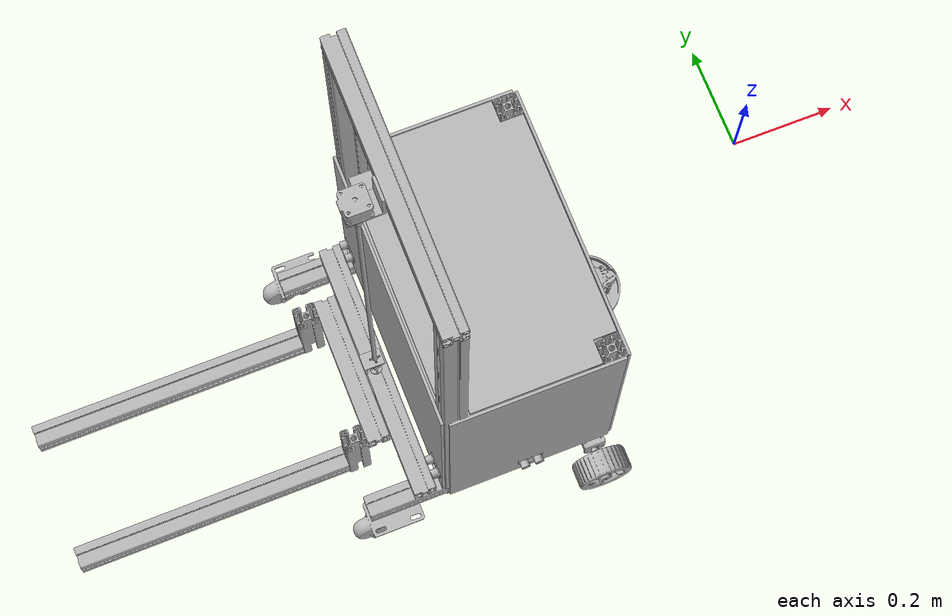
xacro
<?xml version="1.0" ?>
<robot name="fork_redesigned" xmlns:xacro="http://www.ros.org/wiki/xacro">

<material name="silver">
  <color rgba="0.700 0.700 0.700 1.000"/>
</material>

<link name="base_link">
  <inertial>
    <origin xyz="-0.20795469184056845 0.6059726874768782 0.0024999999999999988" rpy="0 0 0"/>
    <mass value="5.803455309747966"/>
    <inertia ixx="0.045914" iyy="0.111394" izz="0.157284" ixy="0.0" iyz="0.0" ixz="0.0"/>
  </inertial>
  <visual>
    <origin xyz="0 0 0" rpy="0 0 0"/>
    <geometry>
      <mesh filename="file://$(find mybot_description)/meshes/base_link.stl" scale="0.001 0.001 0.001"/>
    </geometry>
    <material name="silver"/>
  </visual>
  <collision>
    <origin xyz="0 0 0" rpy="0 0 0"/>
    <geometry>
      <mesh filename="file://$(find mybot_description)/meshes/base_link.stl" scale="0.001 0.001 0.001"/>
    </geometry>
  </collision>
</link>

<link name="left_motor_link_1">
  <inertial>
    <origin xyz="-0.025746401927791592 -5.590644955644208e-06 0.006676741521228598" rpy="0 0 0"/>
    <mass value="0.12785022222079845"/>
    <inertia ixx="2.3e-05" iyy="5.6e-05" izz="5.6e-05" ixy="-0.0" iyz="0.0" ixz="2e-06"/>
  </inertial>
  <visual>
    <origin xyz="-0.046591 -0.481881 0.034" rpy="0 0 0"/>
    <geometry>
      <mesh filename="file://$(find mybot_description)/meshes/left_motor_link_1.stl" scale="0.001 0.001 0.001"/>
    </geometry>
    <material name="silver"/>
  </visual>
  <collision>
    <origin xyz="-0.046591 -0.481881 0.034" rpy="0 0 0"/>
    <geometry>
      <mesh filename="file://$(find mybot_description)/meshes/left_motor_link_1.stl" scale="0.001 0.001 0.001"/>
    </geometry>
  </collision>
</link>

<link name="right_motor_link_1">
  <inertial>
    <origin xyz="0.025746018246653235 3.979878347382115e-06 0.0066732309909901845" rpy="0 0 0"/>
    <mass value="0.12785022222079845"/>
    <inertia ixx="2.3e-05" iyy="5.6e-05" izz="5.6e-05" ixy="-0.0" iyz="-0.0" ixz="-2e-06"/>
  </inertial>
  <visual>
    <origin xyz="0.4625 -0.481881 0.034" rpy="0 0 0"/>
    <geometry>
      <mesh filename="file://$(find mybot_description)/meshes/right_motor_link_1.stl" scale="0.001 0.001 0.001"/>
    </geometry>
    <material name="silver"/>
  </visual>
  <collision>
    <origin xyz="0.4625 -0.481881 0.034" rpy="0 0 0"/>
    <geometry>
      <mesh filename="file://$(find mybot_description)/meshes/right_motor_link_1.stl" scale="0.001 0.001 0.001"/>
    </geometry>
  </collision>
</link>

<link name="left_wheel_link_1">
  <inertial>
    <origin xyz="2.7720433450062476e-07 -2.0531275590762732e-07 3.703704010149522e-13" rpy="0 0 0"/>
    <mass value="1.9401899677229664"/>
    <inertia ixx="0.002715" iyy="0.001642" izz="0.001642" ixy="0.0" iyz="-0.0" ixz="0.0"/>
  </inertial>
  <visual>
    <origin xyz="-0.080339 -0.481881 0.034" rpy="0 0 0"/>
    <geometry>
      <mesh filename="file://$(find mybot_description)/meshes/left_wheel_link_1.stl" scale="0.001 0.001 0.001"/>
    </geometry>
    <material name="silver"/>
  </visual>
  <collision><origin xyz="0 0 0" rpy="0 1.5708 0"/><geometry><cylinder radius="0.053" length="0.04"/></geometry></collision>
</link>

<link name="right_wheel_link_1">
  <inertial>
    <origin xyz="-3.5186992197733247e-07 -2.0517171450684657e-07 2.986638714119749e-13" rpy="0 0 0"/>
    <mass value="1.9401899677229664"/>
    <inertia ixx="0.002715" iyy="0.001642" izz="0.001642" ixy="0.0" iyz="-0.0" ixz="0.0"/>
  </inertial>
  <visual>
    <origin xyz="0.497251 -0.481881 0.034" rpy="0 0 0"/>
    <geometry>
      <mesh filename="file://$(find mybot_description)/meshes/right_wheel_link_1.stl" scale="0.001 0.001 0.001"/>
    </geometry>
    <material name="silver"/>
  </visual>
  <collision><origin xyz="0 0 0" rpy="0 1.5708 0"/><geometry><cylinder radius="0.053" length="0.04"/></geometry></collision>
</link>

<link name="fork_coupling_link_1">
  <inertial>
    <origin xyz="3.705325111180713e-07 -1.826110224145694e-07 -0.003490428234809051" rpy="0 0 0"/>
    <mass value="0.012051917875242903"/>
    <inertia ixx="0.0" iyy="0.0" izz="1e-06" ixy="0.0" iyz="0.0" ixz="0.0"/>
  </inertial>
  <visual>
    <origin xyz="0.208955 -0.800881 -0.14442" rpy="0 0 0"/>
    <geometry>
      <mesh filename="file://$(find mybot_description)/meshes/fork_coupling_link_1.stl" scale="0.001 0.001 0.001"/>
    </geometry>
    <material name="silver"/>
  </visual>
  <collision>
    <origin xyz="0.208955 -0.800881 -0.14442" rpy="0 0 0"/>
    <geometry>
      <mesh filename="file://$(find mybot_description)/meshes/fork_coupling_link_1.stl" scale="0.001 0.001 0.001"/>
    </geometry>
  </collision>
</link>

<link name="fork_center_slot_1">
  <inertial>
    <origin xyz="3.0815943902195997e-07 0.020000494982010952 -0.011399999999995525" rpy="0 0 0"/>
    <mass value="0.39467195073133987"/>
    <inertia ixx="0.000117" iyy="0.002456" izz="0.002456" ixy="0.0" iyz="-0.0" ixz="0.0"/>
  </inertial>
  <visual>
    <origin xyz="0.208955 -0.824421 -0.13292" rpy="0 0 0"/>
    <geometry>
      <mesh filename="file://$(find mybot_description)/meshes/fork_center_slot_1.stl" scale="0.001 0.001 0.001"/>
    </geometry>
    <material name="silver"/>
  </visual>
  <collision>
    <origin xyz="0.208955 -0.824421 -0.13292" rpy="0 0 0"/>
    <geometry>
      <mesh filename="file://$(find mybot_description)/meshes/fork_center_slot_1.stl" scale="0.001 0.001 0.001"/>
    </geometry>
  </collision>
</link>

<link name="fork_left_link_1">
  <inertial>
    <origin xyz="-0.016999691840535375 0.25000049498201105 0.020000000000036586" rpy="0 0 0"/>
    <mass value="0.7308739828358146"/>
    <inertia ixx="0.015334" iyy="0.000216" izz="0.015334" ixy="-0.0" iyz="-0.0" ixz="0.0"/>
  </inertial>
  <visual>
    <origin xyz="0.073955 -0.904421 0.01148" rpy="0 0 0"/>
    <geometry>
      <mesh filename="file://$(find mybot_description)/meshes/fork_left_link_1.stl" scale="0.001 0.001 0.001"/>
    </geometry>
    <material name="silver"/>
  </visual>
  <collision>
    <origin xyz="0.073955 -0.904421 0.01148" rpy="0 0 0"/>
    <geometry>
      <mesh filename="file://$(find mybot_description)/meshes/fork_left_link_1.stl" scale="0.001 0.001 0.001"/>
    </geometry>
  </collision>
</link>

<link name="fork_right_link_1">
  <inertial>
    <origin xyz="0.020000308159456304 0.2500004949820257 0.01700000000003189" rpy="0 0 0"/>
    <mass value="0.730873982835814"/>
    <inertia ixx="0.015334" iyy="0.000216" izz="0.015334" ixy="-0.0" iyz="-0.0" ixz="0.0"/>
  </inertial>
  <visual>
    <origin xyz="0.343955 -0.904421 0.01148" rpy="0 0 0"/>
    <geometry>
      <mesh filename="file://$(find mybot_description)/meshes/fork_right_link_1.stl" scale="0.001 0.001 0.001"/>
    </geometry>
    <material name="silver"/>
  </visual>
  <collision>
    <origin xyz="0.343955 -0.904421 0.01148" rpy="0 0 0"/>
    <geometry>
      <mesh filename="file://$(find mybot_description)/meshes/fork_right_link_1.stl" scale="0.001 0.001 0.001"/>
    </geometry>
  </collision>
</link>

<link name="left_caster_link_1">
  <inertial>
    <origin xyz="0.0323283745581979 -0.009671932993636001 -0.039792097393055066" rpy="0 0 0"/>
    <mass value="0.12150975817789704"/>
    <inertia ixx="0.00015" iyy="8.9e-05" izz="9.4e-05" ixy="-2e-06" iyz="4.5e-05" ixz="1e-06"/>
  </inertial>
  <visual>
    <origin xyz="0.004955 -0.901881 -0.005" rpy="0 0 0"/>
    <geometry>
      <mesh filename="file://$(find mybot_description)/meshes/left_caster_link_1.stl" scale="0.001 0.001 0.001"/>
    </geometry>
    <material name="silver"/>
  </visual>
  <collision><origin xyz="0.0323283 -0.0096719 -0.0398" rpy="0 0 0"/><geometry><sphere radius="0.053"/></geometry></collision>
</link>

<link name="right_caster_link_1">
  <inertial>
    <origin xyz="-0.03249968838843048 -0.01040190184053158 -0.03942068950412225" rpy="0 0 0"/>
    <mass value="0.12271576702932177"/>
    <inertia ixx="0.000159" iyy="9.1e-05" izz="0.000101" ixy="0.0" iyz="4.8e-05" ixz="-0.0"/>
  </inertial>
  <visual>
    <origin xyz="0.410955 -0.901881 -0.005" rpy="0 0 0"/>
    <geometry>
      <mesh filename="file://$(find mybot_description)/meshes/right_caster_link_1.stl" scale="0.001 0.001 0.001"/>
    </geometry>
    <material name="silver"/>
  </visual>
  <collision><origin xyz="-0.0325 -0.0104019 -0.0394" rpy="0 0 0"/><geometry><sphere radius="0.053"/></geometry></collision>
</link>

<link name="fork_left_h_slot_1">
  <inertial>
    <origin xyz="-0.016999691840558134 0.02000049498201173 -0.0749999999999916" rpy="0 0 0"/>
    <mass value="0.21926219485074405"/>
    <inertia ixx="0.000444" iyy="0.000444" izz="6.5e-05" ixy="0.0" iyz="0.0" ixz="0.0"/>
  </inertial>
  <visual>
    <origin xyz="0.073955 -0.864421 -0.13852" rpy="0 0 0"/>
    <geometry>
      <mesh filename="file://$(find mybot_description)/meshes/fork_left_h_slot_1.stl" scale="0.001 0.001 0.001"/>
    </geometry>
    <material name="silver"/>
  </visual>
  <collision>
    <origin xyz="0.073955 -0.864421 -0.13852" rpy="0 0 0"/>
    <geometry>
      <mesh filename="file://$(find mybot_description)/meshes/fork_left_h_slot_1.stl" scale="0.001 0.001 0.001"/>
    </geometry>
  </collision>
</link>

<link name="fork_right_h_slot_1">
  <inertial>
    <origin xyz="0.017000308159592414 0.020000494982023165 -0.0749999999999919" rpy="0 0 0"/>
    <mass value="0.21926219485074516"/>
    <inertia ixx="0.000444" iyy="0.000444" izz="6.5e-05" ixy="0.0" iyz="0.0" ixz="-0.0"/>
  </inertial>
  <visual>
    <origin xyz="0.343955 -0.864421 -0.13852" rpy="0 0 0"/>
    <geometry>
      <mesh filename="file://$(find mybot_description)/meshes/fork_right_h_slot_1.stl" scale="0.001 0.001 0.001"/>
    </geometry>
    <material name="silver"/>
  </visual>
  <collision>
    <origin xyz="0.343955 -0.864421 -0.13852" rpy="0 0 0"/>
    <geometry>
      <mesh filename="file://$(find mybot_description)/meshes/fork_right_h_slot_1.stl" scale="0.001 0.001 0.001"/>
    </geometry>
  </collision>
</link>

<link name="front_bottom_slot_link_1">
  <inertial>
    <origin xyz="3.081594328602222e-07 0.016999794757658004 0.020000000000151952" rpy="0 0 0"/>
    <mass value="0.5846991862686549"/>
    <inertia ixx="0.000173" iyy="0.007882" izz="0.007882" ixy="-0.0" iyz="0.0" ixz="0.0"/>
  </inertial>
  <visual>
    <origin xyz="0.207955 -0.454881 -0.005" rpy="0 0 0"/>
    <geometry>
      <mesh filename="file://$(find mybot_description)/meshes/front_bottom_slot_link_1.stl" scale="0.001 0.001 0.001"/>
    </geometry>
    <material name="silver"/>
  </visual>
  <collision>
    <origin xyz="0.207955 -0.454881 -0.005" rpy="0 0 0"/>
    <geometry>
      <mesh filename="file://$(find mybot_description)/meshes/front_bottom_slot_link_1.stl" scale="0.001 0.001 0.001"/>
    </geometry>
  </collision>
</link>

<link name="fork_front_slot_right_link_1">
  <inertial>
    <origin xyz="0.017000308159433153 0.019999794757657396 0.23000000000000614" rpy="0 0 0"/>
    <mass value="0.6724040642089485"/>
    <inertia ixx="0.011956" iyy="0.011956" izz="0.000199" ixy="0.0" iyz="0.0" ixz="-0.0"/>
  </inertial>
  <visual>
    <origin xyz="0.444955 -0.451881 -0.045" rpy="0 0 0"/>
    <geometry>
      <mesh filename="file://$(find mybot_description)/meshes/fork_front_slot_right_link_1.stl" scale="0.001 0.001 0.001"/>
    </geometry>
    <material name="silver"/>
  </visual>
  <collision>
    <origin xyz="0.444955 -0.451881 -0.045" rpy="0 0 0"/>
    <geometry>
      <mesh filename="file://$(find mybot_description)/meshes/fork_front_slot_right_link_1.stl" scale="0.001 0.001 0.001"/>
    </geometry>
  </collision>
</link>

<link name="fork_front_slot_left_link_1">
  <inertial>
    <origin xyz="-0.01699969184056261 0.019999794757658007 0.22999999999999526" rpy="0 0 0"/>
    <mass value="0.6724040642089485"/>
    <inertia ixx="0.011956" iyy="0.011956" izz="0.000199" ixy="0.0" iyz="0.0" ixz="-0.0"/>
  </inertial>
  <visual>
    <origin xyz="-0.029045 -0.451881 -0.045" rpy="0 0 0"/>
    <geometry>
      <mesh filename="file://$(find mybot_description)/meshes/fork_front_slot_left_link_1.stl" scale="0.001 0.001 0.001"/>
    </geometry>
    <material name="silver"/>
  </visual>
  <collision>
    <origin xyz="-0.029045 -0.451881 -0.045" rpy="0 0 0"/>
    <geometry>
      <mesh filename="file://$(find mybot_description)/meshes/fork_front_slot_left_link_1.stl" scale="0.001 0.001 0.001"/>
    </geometry>
  </collision>
</link>

<link name="rear_bottom_slot_link_1">
  <inertial>
    <origin xyz="-0.00024969184056747307 -0.016999999999999904 0.020000000000151927" rpy="0 0 0"/>
    <mass value="0.5839683122858196"/>
    <inertia ixx="0.000172" iyy="0.007853" izz="0.007853" ixy="0.0" iyz="0.0" ixz="0.0"/>
  </inertial>
  <visual>
    <origin xyz="0.207955 -0.76 -0.005" rpy="0 0 0"/>
    <geometry>
      <mesh filename="file://$(find mybot_description)/meshes/rear_bottom_slot_link_1.stl" scale="0.001 0.001 0.001"/>
    </geometry>
    <material name="silver"/>
  </visual>
  <collision>
    <origin xyz="0.207955 -0.76 -0.005" rpy="0 0 0"/>
    <geometry>
      <mesh filename="file://$(find mybot_description)/meshes/rear_bottom_slot_link_1.stl" scale="0.001 0.001 0.001"/>
    </geometry>
  </collision>
</link>

<link name="fork_rear_slot_left_link_1">
  <inertial>
    <origin xyz="0.003954308159446224 0.24599979475765743 1.1468809999999938" rpy="0 0 0"/>
    <mass value="1.3155731691044652"/>
    <inertia ixx="0.088995" iyy="0.088995" izz="0.000389" ixy="-0.0" iyz="-0.0" ixz="-0.0"/>
  </inertial>
  <visual>
    <origin xyz="-0.007091 -0.496881 0.651881" rpy="0 0 0"/>
    <geometry>
      <mesh filename="file://$(find mybot_description)/meshes/fork_rear_slot_left_link_1.stl" scale="0.001 0.001 0.001"/>
    </geometry>
    <material name="silver"/>
  </visual>
  <collision>
    <origin xyz="-0.007091 -0.496881 0.651881" rpy="0 0 0"/>
    <geometry>
      <mesh filename="file://$(find mybot_description)/meshes/fork_rear_slot_left_link_1.stl" scale="0.001 0.001 0.001"/>
    </geometry>
  </collision>
</link>

<link name="front_panel_link_1">
  <inertial>
    <origin xyz="3.0815943777295907e-07 -0.002500205242342235 0.246999999999999" rpy="0 0 0"/>
    <mass value="9.42"/>
    <inertia ixx="0.19627" iyy="0.377114" izz="0.180884" ixy="-0.0" iyz="0.0" ixz="-0.0"/>
  </inertial>
  <visual>
    <origin xyz="0.207955 -0.451881 -0.008" rpy="0 0 0"/>
    <geometry>
      <mesh filename="file://$(find mybot_description)/meshes/front_panel_link_1.stl" scale="0.001 0.001 0.001"/>
    </geometry>
    <material name="silver"/>
  </visual>
  <collision>
    <origin xyz="0.207955 -0.451881 -0.008" rpy="0 0 0"/>
    <geometry>
      <mesh filename="file://$(find mybot_description)/meshes/front_panel_link_1.stl" scale="0.001 0.001 0.001"/>
    </geometry>
  </collision>
</link>

<link name="ultrasonic_side_left_1">
  <inertial>
    <origin xyz="-0.028052268925181312 -0.459881293811757 -0.48277897105527917" rpy="0 0 0"/>
    <mass value="0.029441365273187678"/>
    <inertia ixx="6e-06" iyy="1e-06" izz="5e-06" ixy="-0.0" iyz="0.0" ixz="-0.0"/>
  </inertial>
  <visual>
    <origin xyz="-0.069091 -1.067762 -0.5375" rpy="0 0 0"/>
    <geometry>
      <mesh filename="file://$(find mybot_description)/meshes/ultrasonic_side_left_1.stl" scale="0.001 0.001 0.001"/>
    </geometry>
    <material name="silver"/>
  </visual>
  <collision>
    <origin xyz="-0.069091 -1.067762 -0.5375" rpy="0 0 0"/>
    <geometry>
      <mesh filename="file://$(find mybot_description)/meshes/ultrasonic_side_left_1.stl" scale="0.001 0.001 0.001"/>
    </geometry>
  </collision>
</link>

<link name="ultrasonic_rear_right_1">
  <inertial>
    <origin xyz="0.47595439672884804 0.7718742176730425 -0.7357789710552561" rpy="0 0 0"/>
    <mass value="0.029441365273187678"/>
    <inertia ixx="1e-06" iyy="6e-06" izz="5e-06" ixy="0.0" iyz="-0.0" ixz="-0.0"/>
  </inertial>
  <visual>
    <origin xyz="0.891909 -0.0 -0.8455" rpy="0 0 0"/>
    <geometry>
      <mesh filename="file://$(find mybot_description)/meshes/ultrasonic_rear_right_1.stl" scale="0.001 0.001 0.001"/>
    </geometry>
    <material name="silver"/>
  </visual>
  <collision>
    <origin xyz="0.891909 -0.0 -0.8455" rpy="0 0 0"/>
    <geometry>
      <mesh filename="file://$(find mybot_description)/meshes/ultrasonic_rear_right_1.stl" scale="0.001 0.001 0.001"/>
    </geometry>
  </collision>
</link>

<link name="Webcam_1">
  <inertial>
    <origin xyz="3.0815942445028277e-07 0.009262291980458137 0.015000000000013218" rpy="0 0 0"/>
    <mass value="0.4001003373748857"/>
    <inertia ixx="3.8e-05" iyy="0.000312" izz="0.000299" ixy="0.0" iyz="0.0" ixz="0.0"/>
  </inertial>
  <visual>
    <origin xyz="0.207205 -0.818881 -0.0506" rpy="0 0 0"/>
    <geometry>
      <mesh filename="file://$(find mybot_description)/meshes/Webcam_1.stl" scale="0.001 0.001 0.001"/>
    </geometry>
    <material name="silver"/>
  </visual>
  <collision>
    <origin xyz="0.207205 -0.818881 -0.0506" rpy="0 0 0"/>
    <geometry>
      <mesh filename="file://$(find mybot_description)/meshes/Webcam_1.stl" scale="0.001 0.001 0.001"/>
    </geometry>
  </collision>
</link>

<link name="right_bottom_slot_link_1">
  <inertial>
    <origin xyz="-0.01999969184072281 0.22499979475765797 -0.016999999999994044" rpy="0 0 0"/>
    <mass value="0.6577865845522363"/>
    <inertia ixx="0.011197" iyy="0.000194" izz="0.011197" ixy="0.0" iyz="0.0" ixz="-0.0"/>
  </inertial>
  <visual>
    <origin xyz="0.407955 -0.451881 -0.042" rpy="0 0 0"/>
    <geometry>
      <mesh filename="file://$(find mybot_description)/meshes/right_bottom_slot_link_1.stl" scale="0.001 0.001 0.001"/>
    </geometry>
    <material name="silver"/>
  </visual>
  <collision>
    <origin xyz="0.407955 -0.451881 -0.042" rpy="0 0 0"/>
    <geometry>
      <mesh filename="file://$(find mybot_description)/meshes/right_bottom_slot_link_1.stl" scale="0.001 0.001 0.001"/>
    </geometry>
  </collision>
</link>

<link name="left_bottom_slot_link_1">
  <inertial>
    <origin xyz="0.020000308159279286 0.22499979475765852 -0.01700000000000499" rpy="0 0 0"/>
    <mass value="0.6577865845522363"/>
    <inertia ixx="0.011197" iyy="0.000194" izz="0.011197" ixy="0.0" iyz="-0.0" ixz="-0.0"/>
  </inertial>
  <visual>
    <origin xyz="0.007955 -0.451881 -0.042" rpy="0 0 0"/>
    <geometry>
      <mesh filename="file://$(find mybot_description)/meshes/left_bottom_slot_link_1.stl" scale="0.001 0.001 0.001"/>
    </geometry>
    <material name="silver"/>
  </visual>
  <collision>
    <origin xyz="0.007955 -0.451881 -0.042" rpy="0 0 0"/>
    <geometry>
      <mesh filename="file://$(find mybot_description)/meshes/left_bottom_slot_link_1.stl" scale="0.001 0.001 0.001"/>
    </geometry>
  </collision>
</link>

<link name="right_motor_holder_link_1">
  <inertial>
    <origin xyz="-0.02162070548295275 0.01499979475599339 -0.0101518474274165" rpy="0 0 0"/>
    <mass value="0.061662152889289286"/>
    <inertia ixx="1.9e-05" iyy="2.2e-05" izz="2e-05" ixy="-0.0" iyz="-0.0" ixz="-6e-06"/>
  </inertial>
  <visual>
    <origin xyz="0.428 -0.466881 -0.0" rpy="0 0 0"/>
    <geometry>
      <mesh filename="file://$(find mybot_description)/meshes/right_motor_holder_link_1.stl" scale="0.001 0.001 0.001"/>
    </geometry>
    <material name="silver"/>
  </visual>
  <collision>
    <origin xyz="0.428 -0.466881 -0.0" rpy="0 0 0"/>
    <geometry>
      <mesh filename="file://$(find mybot_description)/meshes/right_motor_holder_link_1.stl" scale="0.001 0.001 0.001"/>
    </geometry>
  </collision>
</link>

<link name="left_motor_holder_link_1">
  <inertial>
    <origin xyz="0.021620321801814647 0.014999794759327334 -0.010151847427416521" rpy="0 0 0"/>
    <mass value="0.061662152889289286"/>
    <inertia ixx="1.9e-05" iyy="2.2e-05" izz="2e-05" ixy="-0.0" iyz="0.0" ixz="6e-06"/>
  </inertial>
  <visual>
    <origin xyz="-0.012091 -0.466881 0.0" rpy="0 0 0"/>
    <geometry>
      <mesh filename="file://$(find mybot_description)/meshes/left_motor_holder_link_1.stl" scale="0.001 0.001 0.001"/>
    </geometry>
    <material name="silver"/>
  </visual>
  <collision>
    <origin xyz="-0.012091 -0.466881 0.0" rpy="0 0 0"/>
    <geometry>
      <mesh filename="file://$(find mybot_description)/meshes/left_motor_holder_link_1.stl" scale="0.001 0.001 0.001"/>
    </geometry>
  </collision>
</link>

<link name="clamp_link_1">
  <inertial>
    <origin xyz="-5.91613212697073e-07 0.015295447605025991 -0.038677831596409806" rpy="0 0 0"/>
    <mass value="0.15417304639061474"/>
    <inertia ixx="9.7e-05" iyy="6.7e-05" izz="7.4e-05" ixy="-0.0" iyz="2.7e-05" ixz="0.0"/>
  </inertial>
  <visual>
    <origin xyz="0.208955 -0.762881 -0.9764" rpy="0 0 0"/>
    <geometry>
      <mesh filename="file://$(find mybot_description)/meshes/clamp_link_1.stl" scale="0.001 0.001 0.001"/>
    </geometry>
    <material name="silver"/>
  </visual>
  <collision>
    <origin xyz="0.208955 -0.762881 -0.9764" rpy="0 0 0"/>
    <geometry>
      <mesh filename="file://$(find mybot_description)/meshes/clamp_link_1.stl" scale="0.001 0.001 0.001"/>
    </geometry>
  </collision>
</link>

<link name="ultrasonic_side_right_1">
  <inertial>
    <origin xyz="-0.4619481147559526 -0.4548811166729275 -0.47052897105527036" rpy="0 0 0"/>
    <mass value="0.029441365273187678"/>
    <inertia ixx="6e-06" iyy="1e-06" izz="5e-06" ixy="-0.0" iyz="-0.0" ixz="0.0"/>
  </inertial>
  <visual>
    <origin xyz="-0.005 -1.060262 -0.5275" rpy="0 0 0"/>
    <geometry>
      <mesh filename="file://$(find mybot_description)/meshes/ultrasonic_side_right_1.stl" scale="0.001 0.001 0.001"/>
    </geometry>
    <material name="silver"/>
  </visual>
  <collision>
    <origin xyz="-0.005 -1.060262 -0.5275" rpy="0 0 0"/>
    <geometry>
      <mesh filename="file://$(find mybot_description)/meshes/ultrasonic_side_right_1.stl" scale="0.001 0.001 0.001"/>
    </geometry>
  </collision>
</link>

<link name="right_panel_link_1">
  <inertial>
    <origin xyz="-0.002499691840567364 0.15049979475765696 -0.24849999999999522" rpy="0 0 0"/>
    <mass value="5.871682249999999"/>
    <inertia ixx="0.165195" iyy="0.120875" izz="0.044344" ixy="0.0" iyz="-0.0" ixz="0.0"/>
  </inertial>
  <visual>
    <origin xyz="0.447955 -0.454881 -0.505" rpy="0 0 0"/>
    <geometry>
      <mesh filename="file://$(find mybot_description)/meshes/right_panel_link_1.stl" scale="0.001 0.001 0.001"/>
    </geometry>
    <material name="silver"/>
  </visual>
  <collision>
    <origin xyz="0.447955 -0.454881 -0.505" rpy="0 0 0"/>
    <geometry>
      <mesh filename="file://$(find mybot_description)/meshes/right_panel_link_1.stl" scale="0.001 0.001 0.001"/>
    </geometry>
  </collision>
</link>

<link name="left_panel_link_1">
  <inertial>
    <origin xyz="0.002500308159438046 0.15299979475765835 -0.25000000000000533" rpy="0 0 0"/>
    <mass value="6.00525"/>
    <inertia ixx="0.171968" iyy="0.125122" izz="0.046871" ixy="0.0" iyz="0.0" ixz="-0.0"/>
  </inertial>
  <visual>
    <origin xyz="-0.032045 -0.454881 -0.505" rpy="0 0 0"/>
    <geometry>
      <mesh filename="file://$(find mybot_description)/meshes/left_panel_link_1.stl" scale="0.001 0.001 0.001"/>
    </geometry>
    <material name="silver"/>
  </visual>
  <collision>
    <origin xyz="-0.032045 -0.454881 -0.505" rpy="0 0 0"/>
    <geometry>
      <mesh filename="file://$(find mybot_description)/meshes/left_panel_link_1.stl" scale="0.001 0.001 0.001"/>
    </geometry>
  </collision>
</link>

<link name="center_panel_link_1">
  <inertial>
    <origin xyz="-0.21258413282495595 -0.3570372909095231 -0.19750000000000234" rpy="0 0 0"/>
    <mass value="5.438200843483902"/>
    <inertia ixx="0.03956" iyy="0.09541" izz="0.134946" ixy="0.000113" iyz="0.0" ixz="-0.0"/>
  </inertial>
  <visual>
    <origin xyz="-0.004969 -0.962883 -0.55" rpy="0 0 0"/>
    <geometry>
      <mesh filename="file://$(find mybot_description)/meshes/center_panel_link_1.stl" scale="0.001 0.001 0.001"/>
    </geometry>
    <material name="silver"/>
  </visual>
  <collision>
    <origin xyz="-0.004969 -0.962883 -0.55" rpy="0 0 0"/>
    <geometry>
      <mesh filename="file://$(find mybot_description)/meshes/center_panel_link_1.stl" scale="0.001 0.001 0.001"/>
    </geometry>
  </collision>
</link>

<link name="top_panel_link_1">
  <inertial>
    <origin xyz="-0.2125841328249572 -0.3570372909095235 -0.04750000000000476" rpy="0 0 0"/>
    <mass value="5.438200843483868"/>
    <inertia ixx="0.03956" iyy="0.09541" izz="0.134946" ixy="0.000113" iyz="0.0" ixz="0.0"/>
  </inertial>
  <visual>
    <origin xyz="-0.004969 -0.962883 -0.55" rpy="0 0 0"/>
    <geometry>
      <mesh filename="file://$(find mybot_description)/meshes/top_panel_link_1.stl" scale="0.001 0.001 0.001"/>
    </geometry>
    <material name="silver"/>
  </visual>
  <collision>
    <origin xyz="-0.004969 -0.962883 -0.55" rpy="0 0 0"/>
    <geometry>
      <mesh filename="file://$(find mybot_description)/meshes/top_panel_link_1.stl" scale="0.001 0.001 0.001"/>
    </geometry>
  </collision>
</link>

<link name="fork_top_slot_link_1">
  <inertial>
    <origin xyz="-0.23999969184053846 -0.017000205242341804 0.020000000000004126" rpy="0 0 0"/>
    <mass value="0.701639023522382"/>
    <inertia ixx="0.000207" iyy="0.013575" izz="0.013575" ixy="-0.0" iyz="0.0" ixz="0.0"/>
  </inertial>
  <visual>
    <origin xyz="-0.031045 -0.759881 -0.945" rpy="0 0 0"/>
    <geometry>
      <mesh filename="file://$(find mybot_description)/meshes/fork_top_slot_link_1.stl" scale="0.001 0.001 0.001"/>
    </geometry>
    <material name="silver"/>
  </visual>
  <collision>
    <origin xyz="-0.031045 -0.759881 -0.945" rpy="0 0 0"/>
    <geometry>
      <mesh filename="file://$(find mybot_description)/meshes/fork_top_slot_link_1.stl" scale="0.001 0.001 0.001"/>
    </geometry>
  </collision>
</link>

<link name="fork_rear_slot_right_link_1">
  <inertial>
    <origin xyz="0.0200003081594457 -0.017000205242341915 -0.4499999999999799" rpy="0 0 0"/>
    <mass value="1.3155731691044652"/>
    <inertia ixx="0.088995" iyy="0.088995" izz="0.000389" ixy="-0.0" iyz="0.0" ixz="-0.0"/>
  </inertial>
  <visual>
    <origin xyz="0.448955 -0.759881 -0.945" rpy="0 0 0"/>
    <geometry>
      <mesh filename="file://$(find mybot_description)/meshes/fork_rear_slot_right_link_1.stl" scale="0.001 0.001 0.001"/>
    </geometry>
    <material name="silver"/>
  </visual>
  <collision>
    <origin xyz="0.448955 -0.759881 -0.945" rpy="0 0 0"/>
    <geometry>
      <mesh filename="file://$(find mybot_description)/meshes/fork_rear_slot_right_link_1.stl" scale="0.001 0.001 0.001"/>
    </geometry>
  </collision>
</link>

<link name="ultrasonic_rear_left_1">
  <inertial>
    <origin xyz="0.4159543967288469 0.7718742176730428 -0.7357789710552692" rpy="0 0 0"/>
    <mass value="0.029441365273187678"/>
    <inertia ixx="1e-06" iyy="6e-06" izz="5e-06" ixy="0.0" iyz="-0.0" ixz="-0.0"/>
  </inertial>
  <visual>
    <origin xyz="0.411909 -0.0 -0.8455" rpy="0 0 0"/>
    <geometry>
      <mesh filename="file://$(find mybot_description)/meshes/ultrasonic_rear_left_1.stl" scale="0.001 0.001 0.001"/>
    </geometry>
    <material name="silver"/>
  </visual>
  <collision>
    <origin xyz="0.411909 -0.0 -0.8455" rpy="0 0 0"/>
    <geometry>
      <mesh filename="file://$(find mybot_description)/meshes/ultrasonic_rear_left_1.stl" scale="0.001 0.001 0.001"/>
    </geometry>
  </collision>
</link>

<link name="lead_screw_link_1">
  <inertial>
    <origin xyz="3.0815944851436683e-07 -2.0524230814888966e-07 -0.399999999999999" rpy="0 0 0"/>
    <mass value="0.30518094202047674"/>
    <inertia ixx="0.016277" iyy="0.016277" izz="2e-06" ixy="0.0" iyz="0.0" ixz="-0.0"/>
  </inertial>
  <visual>
    <origin xyz="0.208955 -0.800881 -0.90442" rpy="0 0 0"/>
    <geometry>
      <mesh filename="file://$(find mybot_description)/meshes/lead_screw_link_1.stl" scale="0.001 0.001 0.001"/>
    </geometry>
    <material name="silver"/>
  </visual>
  <collision>
    <origin xyz="0.208955 -0.800881 -0.90442" rpy="0 0 0"/>
    <geometry>
      <mesh filename="file://$(find mybot_description)/meshes/lead_screw_link_1.stl" scale="0.001 0.001 0.001"/>
    </geometry>
  </collision>
</link>

<link name="rear_panel_link_1">
  <inertial>
    <origin xyz="0.2400003081594368 0.0024997947576589352 0.23000000000001197" rpy="0 0 0"/>
    <mass value="8.6664"/>
    <inertia ixx="0.152836" iyy="0.319212" izz="0.166413" ixy="0.0" iyz="0.0" ixz="-0.0"/>
  </inertial>
  <visual>
    <origin xyz="0.445955 -0.762881 -0.045" rpy="0 0 0"/>
    <geometry>
      <mesh filename="file://$(find mybot_description)/meshes/rear_panel_link_1.stl" scale="0.001 0.001 0.001"/>
    </geometry>
    <material name="silver"/>
  </visual>
  <collision>
    <origin xyz="0.445955 -0.762881 -0.045" rpy="0 0 0"/>
    <geometry>
      <mesh filename="file://$(find mybot_description)/meshes/rear_panel_link_1.stl" scale="0.001 0.001 0.001"/>
    </geometry>
  </collision>
</link>

<link name="fork_bottom_slot_link_1">
  <inertial>
    <origin xyz="0.6847043081594261 0.7988807947576637 -0.7834999999999874" rpy="0 0 0"/>
    <mass value="0.6979846536082016"/>
    <inertia ixx="0.000206" iyy="0.013365" izz="0.013365" ixy="-0.0" iyz="0.0" ixz="0.0"/>
  </inertial>
  <visual>
    <origin xyz="0.891909 -0.0 -0.8455" rpy="0 0 0"/>
    <geometry>
      <mesh filename="file://$(find mybot_description)/meshes/fork_bottom_slot_link_1.stl" scale="0.001 0.001 0.001"/>
    </geometry>
    <material name="silver"/>
  </visual>
  <collision>
    <origin xyz="0.891909 -0.0 -0.8455" rpy="0 0 0"/>
    <geometry>
      <mesh filename="file://$(find mybot_description)/meshes/fork_bottom_slot_link_1.stl" scale="0.001 0.001 0.001"/>
    </geometry>
  </collision>
</link>

<link name="bottom_screw_holder_link_1">
  <inertial>
    <origin xyz="-0.2359496918396995 -0.7908812052423371 0.23813661026358368" rpy="0 0 0"/>
    <mass value="0.014958632790476097"/>
    <inertia ixx="2e-06" iyy="2e-06" izz="1e-06" ixy="0.0" iyz="0.0" ixz="0.0"/>
  </inertial>
  <visual>
    <origin xyz="-0.027045 -1.591962 0.145205" rpy="0 0 0"/>
    <geometry>
      <mesh filename="file://$(find mybot_description)/meshes/bottom_screw_holder_link_1.stl" scale="0.001 0.001 0.001"/>
    </geometry>
    <material name="silver"/>
  </visual>
  <collision>
    <origin xyz="-0.027045 -1.591962 0.145205" rpy="0 0 0"/>
    <geometry>
      <mesh filename="file://$(find mybot_description)/meshes/bottom_screw_holder_link_1.stl" scale="0.001 0.001 0.001"/>
    </geometry>
  </collision>
</link>

<link name="imu_link_1">
  <inertial>
    <origin xyz="0.0004657550144223921 -7.40369251310824e-05 0.0011352557386975493" rpy="0 0 0"/>
    <mass value="0.0006377115631169521"/>
    <inertia ixx="0.0" iyy="0.0" izz="0.0" ixy="0.0" iyz="0.0" ixz="-0.0"/>
  </inertial>
  <visual>
    <origin xyz="0.207575 -0.606075 -0.355" rpy="0 0 0"/>
    <geometry>
      <mesh filename="file://$(find mybot_description)/meshes/imu_link_1.stl" scale="0.001 0.001 0.001"/>
    </geometry>
    <material name="silver"/>
  </visual>
  <collision>
    <origin xyz="0.207575 -0.606075 -0.355" rpy="0 0 0"/>
    <geometry>
      <mesh filename="file://$(find mybot_description)/meshes/imu_link_1.stl" scale="0.001 0.001 0.001"/>
    </geometry>
  </collision>
</link>

<link name="ultrasonic_front_left_1">
  <inertial>
    <origin xyz="0.45920421959001656 -0.45087462815772605 -0.8285289710552801" rpy="0 0 0"/>
    <mass value="0.029441365273187678"/>
    <inertia ixx="1e-06" iyy="6e-06" izz="5e-06" ixy="0.0" iyz="0.0" ixz="0.0"/>
  </inertial>
  <visual>
    <origin xyz="0.464909 -0.893762 -0.8585" rpy="0 0 0"/>
    <geometry>
      <mesh filename="file://$(find mybot_description)/meshes/ultrasonic_front_left_1.stl" scale="0.001 0.001 0.001"/>
    </geometry>
    <material name="silver"/>
  </visual>
  <collision>
    <origin xyz="0.464909 -0.893762 -0.8585" rpy="0 0 0"/>
    <geometry>
      <mesh filename="file://$(find mybot_description)/meshes/ultrasonic_front_left_1.stl" scale="0.001 0.001 0.001"/>
    </geometry>
  </collision>
</link>

<link name="ultrasonic_front_right_1">
  <inertial>
    <origin xyz="0.534704219590018 -0.4508746281577264 -0.8285289710552699" rpy="0 0 0"/>
    <mass value="0.029441365273187678"/>
    <inertia ixx="1e-06" iyy="6e-06" izz="5e-06" ixy="0.0" iyz="0.0" ixz="0.0"/>
  </inertial>
  <visual>
    <origin xyz="0.944909 -0.893762 -0.8585" rpy="0 0 0"/>
    <geometry>
      <mesh filename="file://$(find mybot_description)/meshes/ultrasonic_front_right_1.stl" scale="0.001 0.001 0.001"/>
    </geometry>
    <material name="silver"/>
  </visual>
  <collision>
    <origin xyz="0.944909 -0.893762 -0.8585" rpy="0 0 0"/>
    <geometry>
      <mesh filename="file://$(find mybot_description)/meshes/ultrasonic_front_right_1.stl" scale="0.001 0.001 0.001"/>
    </geometry>
  </collision>
</link>

<link name="nema_link_1">
  <inertial>
    <origin xyz="3.7380730771863213e-07 -2.3129234075103255e-05 0.018208735116507002" rpy="0 0 0"/>
    <mass value="0.20992974225387992"/>
    <inertia ixx="8.2e-05" iyy="8.2e-05" izz="6.2e-05" ixy="-0.0" iyz="-0.0" ixz="-0.0"/>
  </inertial>
  <visual>
    <origin xyz="0.208955 -0.800881 -0.9264" rpy="0 0 0"/>
    <geometry>
      <mesh filename="file://$(find mybot_description)/meshes/nema_link_1.stl" scale="0.001 0.001 0.001"/>
    </geometry>
    <material name="silver"/>
  </visual>
  <collision>
    <origin xyz="0.208955 -0.800881 -0.9264" rpy="0 0 0"/>
    <geometry>
      <mesh filename="file://$(find mybot_description)/meshes/nema_link_1.stl" scale="0.001 0.001 0.001"/>
    </geometry>
  </collision>
</link>

<link name="coupling_link_1">
  <inertial>
    <origin xyz="3.409724729508401e-07 -2.052422373166607e-07 -0.012534238766664263" rpy="0 0 0"/>
    <mass value="0.0351024483903194"/>
    <inertia ixx="7e-06" iyy="7e-06" izz="1e-06" ixy="0.0" iyz="-0.0" ixz="0.0"/>
  </inertial>
  <visual>
    <origin xyz="0.208955 -0.800881 -0.90442" rpy="0 0 0"/>
    <geometry>
      <mesh filename="file://$(find mybot_description)/meshes/coupling_link_1.stl" scale="0.001 0.001 0.001"/>
    </geometry>
    <material name="silver"/>
  </visual>
  <collision>
    <origin xyz="0.208955 -0.800881 -0.90442" rpy="0 0 0"/>
    <geometry>
      <mesh filename="file://$(find mybot_description)/meshes/coupling_link_1.stl" scale="0.001 0.001 0.001"/>
    </geometry>
  </collision>
</link>

<link name="fork_holder_link_1">
  <inertial>
    <origin xyz="0.6508803081594807 0.07104349378215458 -1.6282084795268164" rpy="0 0 0"/>
    <mass value="0.06369340089197861"/>
    <inertia ixx="1.3e-05" iyy="1e-05" izz="1.3e-05" ixy="0.0" iyz="4e-06" ixz="-0.0"/>
  </inertial>
  <visual>
    <origin xyz="0.859835 -0.741926 -1.76884" rpy="0 0 0"/>
    <geometry>
      <mesh filename="file://$(find mybot_description)/meshes/fork_holder_link_1.stl" scale="0.001 0.001 0.001"/>
    </geometry>
    <material name="silver"/>
  </visual>
  <collision>
    <origin xyz="0.859835 -0.741926 -1.76884" rpy="0 0 0"/>
    <geometry>
      <mesh filename="file://$(find mybot_description)/meshes/fork_holder_link_1.stl" scale="0.001 0.001 0.001"/>
    </geometry>
  </collision>
</link>

<link name="ydliar_plate_link_1">
  <inertial>
    <origin xyz="0.4970374578504744 -0.4928381088428769 -0.7818801127483791" rpy="0 0 0"/>
    <mass value="0.5401553750458953"/>
    <inertia ixx="0.000574" iyy="0.000625" izz="0.001118" ixy="0.0" iyz="-5.4e-05" ixz="0.0"/>
  </inertial>
  <visual>
    <origin xyz="0.704909 -0.893762 -0.8585" rpy="0 0 0"/>
    <geometry>
      <mesh filename="file://$(find mybot_description)/meshes/ydliar_plate_link_1.stl" scale="0.001 0.001 0.001"/>
    </geometry>
    <material name="silver"/>
  </visual>
</link>

<link name="lidar_link_1">
  <inertial>
    <origin xyz="-4.626931570661519e-07 -0.047533034442222344 0.01499999059121089" rpy="0 0 0"/>
    <mass value="0.013063952294402428"/>
    <inertia ixx="1.6e-05" iyy="4e-06" izz="1.8e-05" ixy="-0.0" iyz="-0.0" ixz="-0.0"/>
  </inertial>
  <visual>
    <origin xyz="0.20837 -0.437217 -0.075" rpy="0 0 0"/>
    <geometry>
      <mesh filename="file://$(find mybot_description)/meshes/lidar_link_1.stl" scale="0.001 0.001 0.001"/>
    </geometry>
    <material name="silver"/>
  </visual>
</link>

<joint name="Rigid_15" type="fixed">
  <origin xyz="0.0345 0.015 -0.034" rpy="0 0 0"/>
  <parent link="left_motor_holder_link_1"/>
  <child link="left_motor_link_1"/>
</joint>

<joint name="Rigid_16" type="fixed">
  <origin xyz="-0.0345 0.015 -0.034" rpy="0 0 0"/>
  <parent link="right_motor_holder_link_1"/>
  <child link="right_motor_link_1"/>
</joint>

<joint name="Rigid_17" type="continuous">
  <origin xyz="0.033748 0.0 0.0" rpy="0 0 0"/>
  <parent link="left_motor_link_1"/>
  <child link="left_wheel_link_1"/>
  <axis xyz="1 0 0"/>
  <dynamics damping="0.2" friction="0.0"/>
  <limit effort="300" velocity="20"/>
</joint>

<joint name="Rigid_18" type="continuous">
  <origin xyz="-0.034751 0.0 0.0" rpy="0 0 0"/>
  <parent link="right_motor_link_1"/>
  <child link="right_wheel_link_1"/>
  <axis xyz="1 0 0"/>
  <dynamics damping="0.2" friction="0.0"/>
  <limit effort="300" velocity="20"/>
</joint>

<joint name="Rigid_42" type="fixed">
  <origin xyz="0.65088 0.058955 -1.62442" rpy="0 0 0"/>
  <parent link="fork_holder_link_1"/>
  <child link="fork_coupling_link_1"/>
</joint>

<joint name="Rigid_44" type="fixed">
  <origin xyz="0.65088 0.082495 -1.63592" rpy="0 0 0"/>
  <parent link="fork_holder_link_1"/>
  <child link="fork_center_slot_1"/>
</joint>

<joint name="Rigid_47" type="fixed">
  <origin xyz="0.0 0.04 -0.15" rpy="0 0 0"/>
  <parent link="fork_left_h_slot_1"/>
  <child link="fork_left_link_1"/>
</joint>

<joint name="Rigid_48" type="fixed">
  <origin xyz="0.0 0.04 -0.15" rpy="0 0 0"/>
  <parent link="fork_right_h_slot_1"/>
  <child link="fork_right_link_1"/>
</joint>

<joint name="Rigid_58" type="fixed">
  <origin xyz="0.003 0.45 -0.037" rpy="0 0 0"/>
  <parent link="left_bottom_slot_link_1"/>
  <child link="left_caster_link_1"/>
</joint>

<joint name="Rigid_59" type="fixed">
  <origin xyz="-0.003 0.45 -0.037" rpy="0 0 0"/>
  <parent link="right_bottom_slot_link_1"/>
  <child link="right_caster_link_1"/>
</joint>

<joint name="Rigid_60" type="fixed">
  <origin xyz="0.135 0.04 0.0056" rpy="0 0 0"/>
  <parent link="fork_center_slot_1"/>
  <child link="fork_left_h_slot_1"/>
</joint>

<joint name="Rigid_61" type="fixed">
  <origin xyz="-0.135 0.04 0.0056" rpy="0 0 0"/>
  <parent link="fork_center_slot_1"/>
  <child link="fork_right_h_slot_1"/>
</joint>

<joint name="Rigid_62" type="fixed">
  <origin xyz="-0.207955 0.454881 0.005" rpy="0 0 0"/>
  <parent link="base_link"/>
  <child link="front_bottom_slot_link_1"/>
</joint>

<joint name="Rigid_65" type="fixed">
  <origin xyz="-0.037 0.0 0.003" rpy="0 0 0"/>
  <parent link="right_bottom_slot_link_1"/>
  <child link="fork_front_slot_right_link_1"/>
</joint>

<joint name="Rigid_66" type="fixed">
  <origin xyz="0.037 0.0 0.003" rpy="0 0 0"/>
  <parent link="left_bottom_slot_link_1"/>
  <child link="fork_front_slot_left_link_1"/>
</joint>

<joint name="Rigid_67" type="fixed">
  <origin xyz="-0.207955 0.76 0.005" rpy="0 0 0"/>
  <parent link="base_link"/>
  <child link="rear_bottom_slot_link_1"/>
</joint>

<joint name="Rigid_68" type="fixed">
  <origin xyz="0.015046 0.045 -0.693881" rpy="0 0 0"/>
  <parent link="left_bottom_slot_link_1"/>
  <child link="fork_rear_slot_left_link_1"/>
</joint>

<joint name="Rigid_76" type="fixed">
  <origin xyz="0.0 -0.003 0.003" rpy="0 0 0"/>
  <parent link="front_bottom_slot_link_1"/>
  <child link="front_panel_link_1"/>
</joint>

<joint name="Rigid_88" type="fixed">
  <origin xyz="0.037046 0.612881 0.0325" rpy="0 0 0"/>
  <parent link="left_panel_link_1"/>
  <child link="ultrasonic_side_left_1"/>
</joint>

<joint name="Rigid_89" type="fixed">
  <origin xyz="-0.445954 -0.762881 0.8005" rpy="0 0 0"/>
  <parent link="rear_panel_link_1"/>
  <child link="ultrasonic_rear_right_1"/>
</joint>

<joint name="Rigid_92" type="fixed">
  <origin xyz="0.684704 0.818881 -0.7949" rpy="0 0 0"/>
  <parent link="fork_bottom_slot_link_1"/>
  <child link="Webcam_1"/>
</joint>

<joint name="Rigid_93" type="fixed">
  <origin xyz="-0.2 -0.003 0.037" rpy="0 0 0"/>
  <parent link="front_bottom_slot_link_1"/>
  <child link="right_bottom_slot_link_1"/>
</joint>

<joint name="Rigid_94" type="fixed">
  <origin xyz="0.2 -0.003 0.037" rpy="0 0 0"/>
  <parent link="front_bottom_slot_link_1"/>
  <child link="left_bottom_slot_link_1"/>
</joint>

<joint name="Rigid_95" type="fixed">
  <origin xyz="-0.428 0.466881 0.0" rpy="0 0 0"/>
  <parent link="base_link"/>
  <child link="right_motor_holder_link_1"/>
</joint>

<joint name="Rigid_96" type="fixed">
  <origin xyz="0.012091 0.466881 0.0" rpy="0 0 0"/>
  <parent link="base_link"/>
  <child link="left_motor_holder_link_1"/>
</joint>

<joint name="Rigid_110" type="fixed">
  <origin xyz="-0.24 0.003 0.0314" rpy="0 0 0"/>
  <parent link="fork_top_slot_link_1"/>
  <child link="clamp_link_1"/>
</joint>

<joint name="Rigid_111" type="fixed">
  <origin xyz="0.452955 0.605381 0.0225" rpy="0 0 0"/>
  <parent link="right_panel_link_1"/>
  <child link="ultrasonic_side_right_1"/>
</joint>

<joint name="Rigid_112" type="fixed">
  <origin xyz="-0.003 0.003 0.46" rpy="0 0 0"/>
  <parent link="fork_front_slot_right_link_1"/>
  <child link="right_panel_link_1"/>
</joint>

<joint name="Rigid_113" type="fixed">
  <origin xyz="0.003 0.003 0.46" rpy="0 0 0"/>
  <parent link="fork_front_slot_left_link_1"/>
  <child link="left_panel_link_1"/>
</joint>

<joint name="Rigid_114" type="fixed">
  <origin xyz="-0.024076 0.511002 0.505" rpy="0 0 0"/>
  <parent link="fork_front_slot_left_link_1"/>
  <child link="center_panel_link_1"/>
</joint>

<joint name="Rigid_115" type="fixed">
  <origin xyz="-0.024076 0.511002 0.505" rpy="0 0 0"/>
  <parent link="fork_front_slot_left_link_1"/>
  <child link="top_panel_link_1"/>
</joint>

<joint name="Rigid_116" type="fixed">
  <origin xyz="0.023954 0.263 1.596881" rpy="0 0 0"/>
  <parent link="fork_rear_slot_left_link_1"/>
  <child link="fork_top_slot_link_1"/>
</joint>

<joint name="Rigid_117" type="fixed">
  <origin xyz="-0.48 0.0 0.0" rpy="0 0 0"/>
  <parent link="fork_top_slot_link_1"/>
  <child link="fork_rear_slot_right_link_1"/>
</joint>

<joint name="Rigid_118" type="fixed">
  <origin xyz="0.034046 -0.762881 0.8005" rpy="0 0 0"/>
  <parent link="rear_panel_link_1"/>
  <child link="ultrasonic_rear_left_1"/>
</joint>

<joint name="Rigid_119" type="fixed">
  <origin xyz="0.0 0.0 0.0" rpy="0 0 0"/>
  <parent link="coupling_link_1"/>
  <child link="lead_screw_link_1"/>
</joint>

<joint name="Rigid_120" type="fixed">
  <origin xyz="0.003 0.003 -0.9" rpy="0 0 0"/>
  <parent link="fork_rear_slot_right_link_1"/>
  <child link="rear_panel_link_1"/>
</joint>

<joint name="Rigid_121" type="fixed">
  <origin xyz="-0.445954 -0.762881 0.8005" rpy="0 0 0"/>
  <parent link="rear_panel_link_1"/>
  <child link="fork_bottom_slot_link_1"/>
</joint>

<joint name="Rigid_122" type="fixed">
  <origin xyz="0.918954 1.591962 -0.990705" rpy="0 0 0"/>
  <parent link="fork_bottom_slot_link_1"/>
  <child link="bottom_screw_holder_link_1"/>
</joint>

<joint name="Rigid_123" type="fixed">
  <origin xyz="-0.212544 -0.356808 -0.195" rpy="0 0 0"/>
  <parent link="center_panel_link_1"/>
  <child link="imu_link_1"/>
</joint>

<joint name="Rigid_124" type="fixed">
  <origin xyz="-0.256954 0.441881 0.8505" rpy="0 0 0"/>
  <parent link="front_panel_link_1"/>
  <child link="ultrasonic_front_left_1"/>
</joint>

<joint name="Rigid_125" type="fixed">
  <origin xyz="-0.736954 0.441881 0.8505" rpy="0 0 0"/>
  <parent link="front_panel_link_1"/>
  <child link="ultrasonic_front_right_1"/>
</joint>

<joint name="Rigid_126" type="fixed">
  <origin xyz="0.0 0.038 -0.05" rpy="0 0 0"/>
  <parent link="clamp_link_1"/>
  <child link="nema_link_1"/>
</joint>

<joint name="Rigid_127" type="fixed">
  <origin xyz="0.0 0.0 -0.02198" rpy="0 0 0"/>
  <parent link="nema_link_1"/>
  <child link="coupling_link_1"/>
</joint>

<joint name="Slider_128" type="prismatic">
  <origin xyz="-0.65088 -0.058955 0.86442" rpy="0 0 0"/>
  <parent link="coupling_link_1"/>
  <child link="fork_holder_link_1"/>
  <axis xyz="0 0 1"/>
  <limit lower="0.0" upper="0.72" effort="500" velocity="0.2"/>
  <dynamics damping="200" friction="50"/>
</joint>

<joint name="Rigid_129" type="fixed">
  <origin xyz="-0.496954 0.441881 0.8505" rpy="0 0 0"/>
  <parent link="front_panel_link_1"/>
  <child link="ydliar_plate_link_1"/>
</joint>

<joint name="Rigid_130" type="fixed">
  <origin xyz="0.496539 -0.456545 -0.7835" rpy="0 0 0"/>
  <parent link="ydliar_plate_link_1"/>
  <child link="lidar_link_1"/>
</joint>

<link name="base_footprint"/>

<joint name="base_footprint_joint" type="fixed">
  <origin xyz="0 0 0.087" rpy="0 0 1.5708"/>
  <parent link="base_footprint"/>
  <child link="base_link"/>
</joint>

<!-- ===== LiDAR frame (scan frame at lidar CoM, same convention as old file) ===== -->
<link name="laser_link">
  <inertial>
    <mass value="0.001"/>
    <inertia ixx="1e-6" ixy="0" ixz="0" iyy="1e-6" iyz="0" izz="1e-6"/>
  </inertial>
</link>

<joint name="laser_joint" type="fixed">
  <parent link="lidar_link_1"/>
  <child link="laser_link"/>
  <origin xyz="-4.6269e-07 -0.047533 0.015" rpy="0 0 1.570796"/>
</joint>

<!-- ===== ros2_control: wheels (velocity) + fork stepper (position) ===== -->
<ros2_control name="GazeboSystem" type="system">
  <hardware>
    <plugin>gazebo_ros2_control/GazeboSystem</plugin>
  </hardware>
  <joint name="Rigid_17">
    <command_interface name="velocity">
      <param name="min">-10</param>
      <param name="max">10</param>
    </command_interface>
    <state_interface name="position"/>
    <state_interface name="velocity"/>
  </joint>
  <joint name="Rigid_18">
    <command_interface name="velocity">
      <param name="min">-10</param>
      <param name="max">10</param>
    </command_interface>
    <state_interface name="position"/>
    <state_interface name="velocity"/>
  </joint>
  <joint name="Slider_128">
    <command_interface name="position"/>
    <state_interface name="position">
      <param name="initial_value">0.0</param>
    </state_interface>
    <state_interface name="velocity"/>
  </joint>
</ros2_control>

<gazebo>
  <plugin name="gazebo_ros2_control" filename="libgazebo_ros2_control.so">
    <robot_param>robot_description</robot_param>
    <robot_param_node>robot_state_publisher</robot_param_node>
    <parameters>$(find mybot_gazebo)/config/fork_controllers.yaml</parameters>
    <ros>
      <remapping>diff_drive_controller/odom:=/odom</remapping>
      <remapping>diff_drive_controller/cmd_vel_unstamped:=/cmd_vel</remapping>
    </ros>
  </plugin>
</gazebo>

<gazebo reference="base_link">
  <material>Gazebo/Grey</material>
  <self_collide>false</self_collide>
</gazebo>

<gazebo reference="left_wheel_link_1">
  <material>Gazebo/Black</material>
  <mu1>1.2</mu1>
  <mu2>1.2</mu2>
  <kp>1000000.0</kp>
  <kd>100.0</kd>
  <minDepth>0.001</minDepth>
  <maxVel>1.0</maxVel>
</gazebo>

<gazebo reference="right_wheel_link_1">
  <material>Gazebo/Black</material>
  <mu1>1.2</mu1>
  <mu2>1.2</mu2>
  <kp>1000000.0</kp>
  <kd>100.0</kd>
  <minDepth>0.001</minDepth>
  <maxVel>1.0</maxVel>
</gazebo>

<gazebo reference="left_caster_link_1">
  <mu1>0.05</mu1>
  <mu2>0.05</mu2>
  <kp>1000000.0</kp>
  <kd>10.0</kd>
  <minDepth>0.001</minDepth>
  <maxVel>1.0</maxVel>
</gazebo>

<gazebo reference="right_caster_link_1">
  <mu1>0.05</mu1>
  <mu2>0.05</mu2>
  <kp>1000000.0</kp>
  <kd>10.0</kd>
  <minDepth>0.001</minDepth>
  <maxVel>1.0</maxVel>
</gazebo>

<!-- ===== LiDAR scan ray (/scan) ===== -->
<gazebo reference="laser_link">
  <sensor name="lidar_sensor" type="ray">
    <always_on>true</always_on>
    <visualize>true</visualize>
    <update_rate>30</update_rate>
    <ray>
      <scan>
        <horizontal>
          <samples>180</samples>
          <resolution>1</resolution>
          <min_angle>1.5708</min_angle>
          <max_angle>4.7124</max_angle>
        </horizontal>
      </scan>
      <range>
        <min>0.12</min>
        <max>10.0</max>
        <resolution>0.01</resolution>
      </range>
      <noise>
        <type>gaussian</type>
        <mean>0.0</mean>
        <stddev>0.01</stddev>
      </noise>
    </ray>
    <plugin name="laser_plugin" filename="libgazebo_ros_ray_sensor.so">
      <ros>
        <remapping>~/out:=/scan</remapping>
      </ros>
      <frame_name>laser_link</frame_name>
      <output_type>sensor_msgs/LaserScan</output_type>
    </plugin>
  </sensor>
</gazebo>

</robot>
